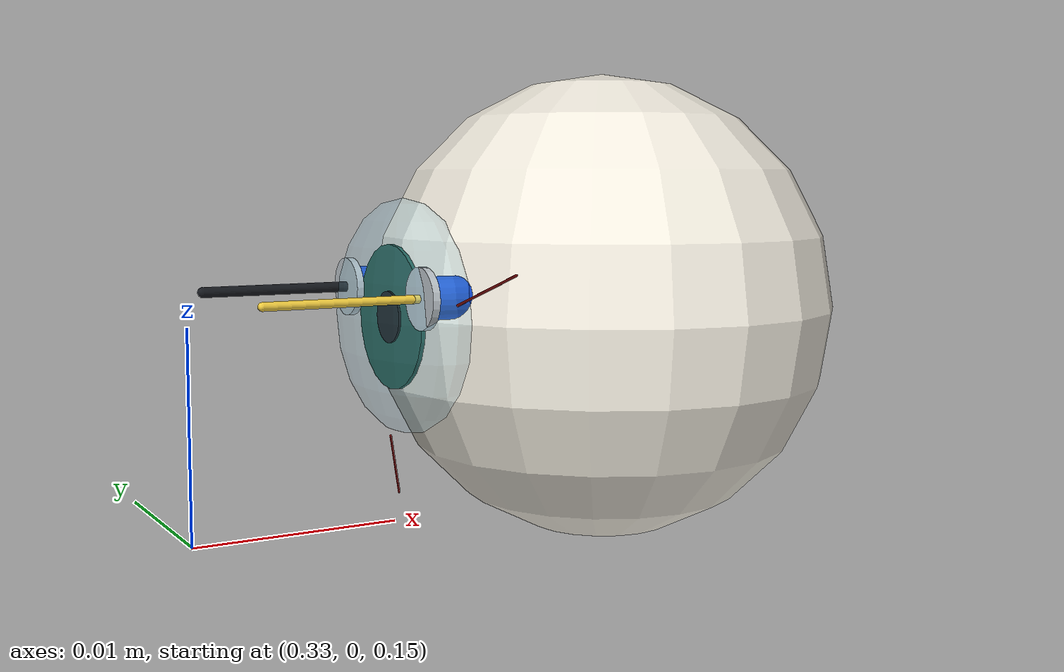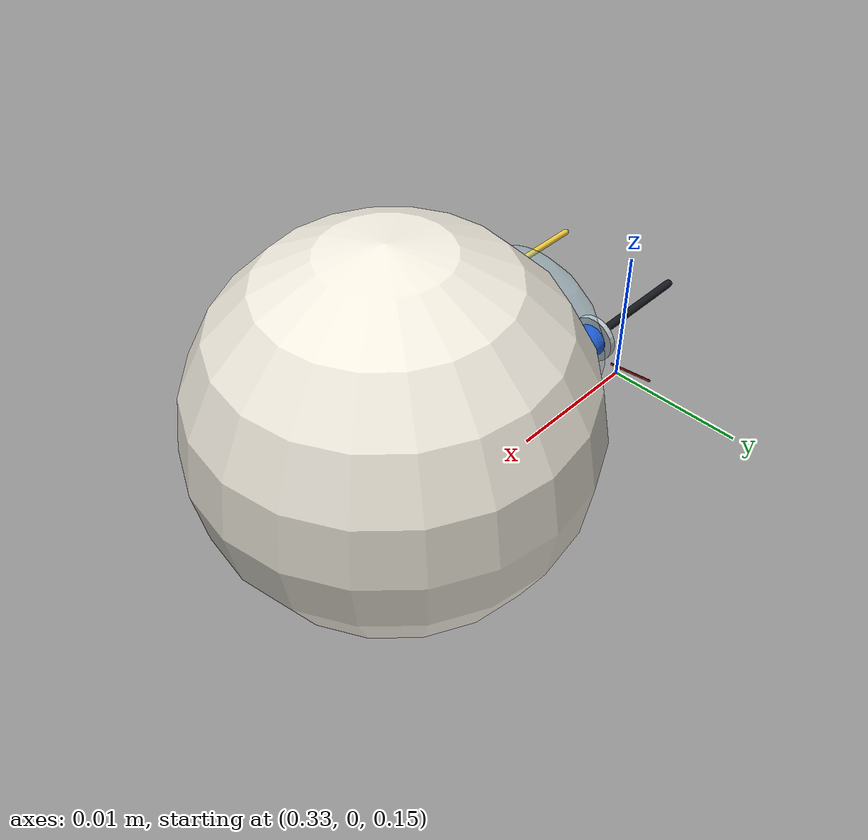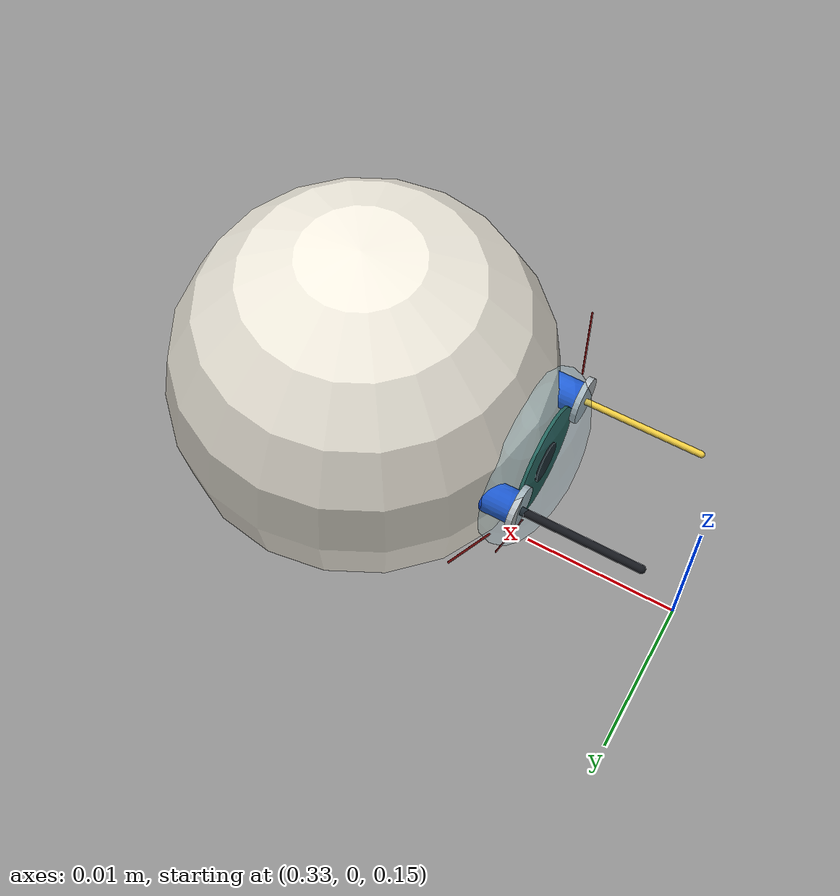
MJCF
<mujoco model="single_arm_ophthalmic_g95_full_eye_overview">
  <compiler angle="radian" coordinate="local"/>
  <option timestep="0.002" gravity="0 0 0"/>
  <visual>
    <global offwidth="960" offheight="720"/>
    <quality shadowsize="4096"/>
    <map znear="0.003" zfar="1.0"/>
    <headlight ambient="0.20 0.20 0.20" diffuse="0.52 0.52 0.50" specular="0.12 0.12 0.12"/>
  </visual>
  <asset>
    <material name="sclera" rgba="0.93 0.91 0.86 1"/>
    <material name="cornea" rgba="0.55 0.86 0.98 0.16"/>
    <material name="iris" rgba="0.07 0.31 0.25 1"/>
    <material name="pupil" rgba="0.008 0.008 0.010 1"/>
    <material name="trocar" rgba="0.05 0.28 0.82 1"/>
    <material name="metal" rgba="0.72 0.75 0.77 1"/>
    <material name="needle" rgba="0.08 0.09 0.11 1"/>
    <material name="fiber" rgba="0.92 0.78 0.24 1"/>
    <material name="vessel" rgba="0.42 0.025 0.025 1"/>
  </asset>
  <worldbody>
    <light name="key" pos="0.30 -0.10 0.24" dir="0.4 0.2 -1" diffuse="0.75 0.73 0.69"/>
    <light name="fill" pos="0.31 0.10 0.20" dir="0.7 -0.3 -0.2" diffuse="0.22 0.25 0.28"/>
    <body name="complete_eye" pos="0.352 0 0.160">
      <!-- Complete 24 mm eyeball envelope. This scene is visual-only. -->
      <geom name="sclera" type="sphere" size="0.012" material="sclera" contype="0" conaffinity="0"/>
      <geom name="cornea" type="ellipsoid" pos="-0.0114 0 0" size="0.0026 0.0057 0.0057" material="cornea" contype="0" conaffinity="0"/>
      <geom name="iris" type="cylinder" pos="-0.01205 0 0" euler="0 1.57079632679 0" size="0.0035 0.00010" material="iris" contype="0" conaffinity="0"/>
      <geom name="pupil" type="cylinder" pos="-0.01218 0 0" euler="0 1.57079632679 0" size="0.00125 0.00008" material="pupil" contype="0" conaffinity="0"/>

      <!-- A few superficial vessel proxies make the globe orientation legible. -->
      <geom type="capsule" fromto="-0.0117 0.0062 0.0008 -0.0108 0.0094 0.0020" size="0.000065" material="vessel" contype="0" conaffinity="0"/>
      <geom type="capsule" fromto="-0.0116 -0.0060 0.0010 -0.0105 -0.0093 0.0025" size="0.000060" material="vessel" contype="0" conaffinity="0"/>
      <geom type="capsule" fromto="-0.0117 0.0010 -0.0060 -0.0107 0.0022 -0.0092" size="0.000055" material="vessel" contype="0" conaffinity="0"/>

      <!-- Frozen left-side dimensions; right trocar/fiber remain planning visuals. -->
      <geom name="left_trocar" type="cylinder" pos="-0.0111 0.0042 0.0012" euler="0 1.57079632679 0" size="0.0010 0.00125" material="trocar" contype="0" conaffinity="0"/>
      <geom name="left_flange" type="cylinder" pos="-0.01245 0.0042 0.0012" euler="0 1.57079632679 0" size="0.00145 0.00018" material="metal" contype="0" conaffinity="0"/>
      <geom name="right_trocar_planning" type="cylinder" pos="-0.0111 -0.0042 0.0012" euler="0 1.57079632679 0" size="0.0010 0.00125" material="trocar" contype="0" conaffinity="0"/>
      <geom name="right_flange_planning" type="cylinder" pos="-0.01245 -0.0042 0.0012" euler="0 1.57079632679 0" size="0.00145 0.00018" material="metal" contype="0" conaffinity="0"/>
      <geom name="needle" type="capsule" fromto="-0.0200 0.0042 0.0012 0.0030 0.0042 0.0012" size="0.000255" material="needle" contype="0" conaffinity="0"/>
      <geom name="fiber_planning" type="capsule" fromto="-0.0200 -0.0042 0.0012 0.0030 -0.0042 0.0012" size="0.00020" material="fiber" contype="0" conaffinity="0"/>
    </body>

    <camera name="full_eye_front" mode="fixed" pos="0.315 0 0.160" xyaxes="0 -1 0 0 0 1" fovy="40"/>
    <camera name="full_eye_oblique" mode="targetbody" target="complete_eye" pos="0.315 -0.032 0.184" fovy="38"/>
    <camera name="full_eye_side" mode="fixed" pos="0.352 -0.050 0.160" xyaxes="1 0 0 0 0 1" fovy="36"/>
  </worldbody>
</mujoco>
